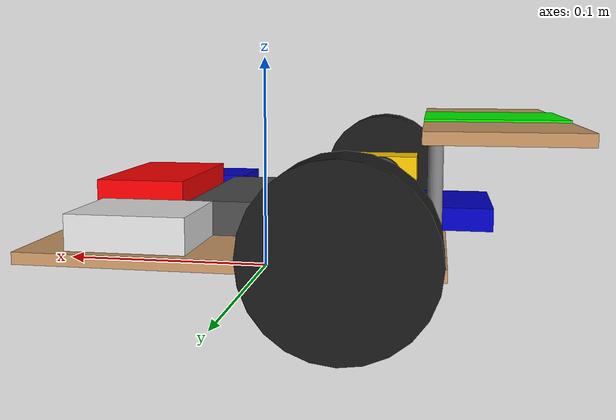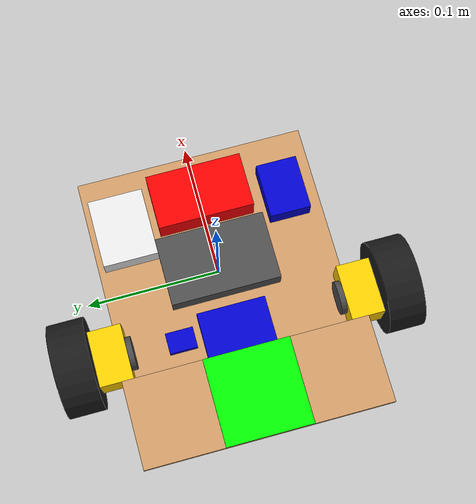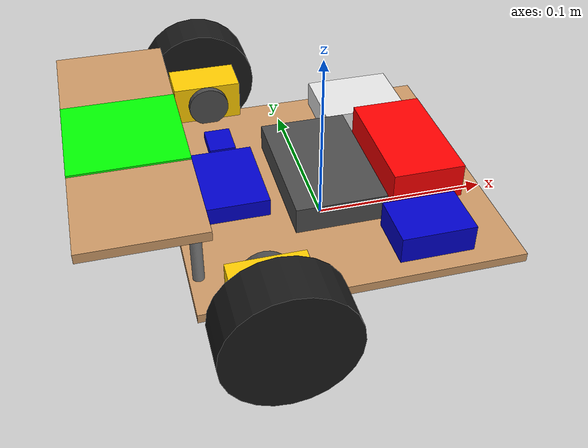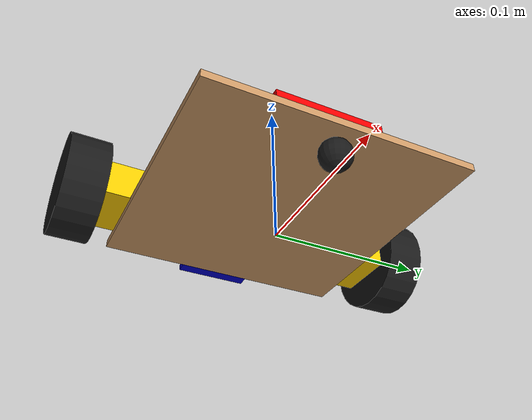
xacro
<?xml version="1.0"?>
<robot name="rc_car" xmlns:xacro="http://ros.org/wiki/xacro">

  <material name="wood"><color rgba="0.8 0.6 0.4 1.0"/></material>
  <material name="yellow"><color rgba="1.0 0.8 0.0 1.0"/></material>
  <material name="black"><color rgba="0.1 0.1 0.1 1.0"/></material>
  <material name="white"><color rgba="0.9 0.9 0.9 1.0"/></material>
  <material name="blue"><color rgba="0.0 0.0 0.8 1.0"/></material>
  <material name="gray"><color rgba="0.5 0.5 0.5 1.0"/></material>
  <material name="dark_gray"><color rgba="0.3 0.3 0.3 1.0"/></material>
  <material name="red"><color rgba="1.0 0.0 0.0 1.0"/></material>
  <material name="green"><color rgba="0.0 1.0 0.0 1.0"/></material>

  <link name="base_footprint"/>

  <joint name="base_joint" type="fixed">
    <parent link="base_footprint"/>
    <child link="base_link"/>
    <origin xyz="0 0 0.02" rpy="0 0 0"/>
  </joint>

  <link name="base_link">
    <visual>
      <origin xyz="0 0 0" rpy="0 0 0"/>
      <geometry><box size="0.17 0.17 0.005"/></geometry>
      <material name="wood"/>
    </visual>
    <collision>
      <geometry><box size="0.17 0.17 0.005"/></geometry>
    </collision>
    <inertial>
      <mass value="1.0"/>
      <inertia ixx="0.01" ixy="0" ixz="0" iyy="0.01" iyz="0" izz="0.01"/>
    </inertial>
  </link>

  <joint name="left_wheel_joint" type="continuous">
    <parent link="base_link"/>
    <child link="left_wheel"/>
    <origin xyz="-0.05 0.115 0.0135" rpy="-1.5708 0 0"/>
    <axis xyz="0 0 1"/>
  </joint>
  <link name="left_wheel">
    <visual>
      <geometry><cylinder radius="0.0335" length="0.026"/></geometry>
      <material name="black"/>
    </visual>
    <collision>
      <geometry><cylinder radius="0.0335" length="0.026"/></geometry>
    </collision>
    <inertial>
      <mass value="0.1"/>
      <inertia ixx="0.0001" ixy="0" ixz="0" iyy="0.0001" iyz="0" izz="0.0001"/>
    </inertial>
  </link>

  <joint name="right_wheel_joint" type="continuous">
    <parent link="base_link"/>
    <child link="right_wheel"/>
    <origin xyz="-0.05 -0.115 0.0135" rpy="-1.5708 0 0"/>
    <axis xyz="0 0 1"/>
  </joint>

  <link name="right_wheel">
    <visual>
      <geometry><cylinder radius="0.0335" length="0.026"/></geometry>
      <material name="black"/>
    </visual>
    <collision>
      <geometry><cylinder radius="0.0335" length="0.026"/></geometry>
    </collision>
    <inertial>
      <mass value="0.1"/>
      <inertia ixx="0.0001" ixy="0" ixz="0" iyy="0.0001" iyz="0" izz="0.0001"/>
    </inertial>
  </link>

  <joint name="left_motor_joint" type="fixed">
    <parent link="base_link"/>
    <child link="left_motor"/>
    <origin xyz="-0.05 0.09 0.0135" rpy="0 0 0"/>
  </joint>
  <link name="left_motor">
    <visual>
      <geometry><box size="0.04 0.024 0.024"/></geometry>
      <material name="yellow"/>
    </visual>
  </link>

  <joint name="left_encoder_joint" type="fixed">
    <parent link="left_motor"/>
    <child link="left_encoder"/>
    <origin xyz="0 -0.014 0" rpy="1.5708 0 0"/>
  </joint>
  <link name="left_encoder">
    <visual>
      <geometry><cylinder radius="0.012" length="0.004"/></geometry>
      <material name="dark_gray"/>
    </visual>
  </link>

  <joint name="right_motor_joint" type="fixed">
    <parent link="base_link"/>
    <child link="right_motor"/>
    <origin xyz="-0.05 -0.09 0.0135" rpy="0 0 0"/>
  </joint>
  <link name="right_motor">
    <visual>
      <geometry><box size="0.04 0.024 0.024"/></geometry>
      <material name="yellow"/>
    </visual>
  </link>

  <joint name="right_encoder_joint" type="fixed">
    <parent link="right_motor"/>
    <child link="right_encoder"/>
    <origin xyz="0 0.014 0" rpy="1.5708 0 0"/>
  </joint>
  <link name="right_encoder">
    <visual>
      <geometry><cylinder radius="0.012" length="0.004"/></geometry>
      <material name="dark_gray"/>
    </visual>
  </link>

  <joint name="arduino_joint" type="fixed">
    <parent link="base_link"/>
    <child link="arduino_board"/>
    <origin xyz="-0.07 0 0.01" rpy="0 0 0"/>
  </joint>
  <link name="arduino_board">
    <visual>
      <geometry><box size="0.07 0.05 0.01"/></geometry>
      <material name="blue"/>
    </visual>
  </link>

  <joint name="esp32_joint" type="fixed">
    <parent link="base_link"/>
    <child link="esp32_board"/>
    <origin xyz="0 0 0.01" rpy="0 0 0"/>
  </joint>
  <link name="esp32_board">
    <visual>
      <geometry><box size="0.05 0.08 0.015"/></geometry>
      <material name="dark_gray"/>
    </visual>
  </link>

  <joint name="battery_joint" type="fixed">
    <parent link="base_link"/>
    <child link="battery"/>
    <origin xyz="0.05 0 0.015" rpy="0 0 0"/>
  </joint>
  <link name="battery">
    <visual>
      <geometry><box size="0.04 0.07 0.02"/></geometry>
      <material name="red"/> </visual>
  </link>

  <joint name="motor_driver_joint" type="fixed">
    <parent link="base_link"/>
    <child link="motor_driver"/>
    <origin xyz="0.04 0.06 0.01" rpy="0 0 0"/>
  </joint>
  <link name="motor_driver">
    <visual>
      <geometry><box size="0.05 0.04 0.015"/></geometry>
      <material name="white"/>
    </visual>
  </link>

  <joint name="converter_joint" type="fixed">
    <parent link="base_link"/>
    <child link="converter"/>
    <origin xyz="0.04 -0.06 0.01" rpy="0 0 0"/>
  </joint>
  <link name="converter">
    <visual>
      <geometry><box size="0.04 0.03 0.015"/></geometry>
      <material name="blue"/>
    </visual>
  </link>

  <joint name="mpu_joint" type="fixed">
    <parent link="base_link"/>
    <child link="mpu6050"/>
    <origin xyz="-0.05 0.04 0.01" rpy="0 0 0"/>
  </joint>
  <link name="mpu6050">
    <visual>
      <geometry><box size="0.015 0.02 0.005"/></geometry>
      <material name="blue"/>
    </visual>
  </link>

  <joint name="left_pillar_joint" type="fixed">
    <parent link="base_link"/>
    <child link="left_pillar"/>
    <origin xyz="-0.08 0.06 0.025" rpy="0 0 0"/>
  </joint>
  <link name="left_pillar">
    <visual>
      <geometry><cylinder radius="0.003" length="0.045"/></geometry>
      <material name="gray"/>
    </visual>
  </link>

  <joint name="right_pillar_joint" type="fixed">
    <parent link="base_link"/>
    <child link="right_pillar"/>
    <origin xyz="-0.08 -0.06 0.025" rpy="0 0 0"/>
  </joint>
  <link name="right_pillar">
    <visual>
      <geometry><cylinder radius="0.003" length="0.045"/></geometry>
      <material name="gray"/>
    </visual>
  </link>

  <joint name="marker_plate_joint" type="fixed">
    <parent link="base_link"/>
    <child link="marker_plate"/>
    <origin xyz="-0.105 0 0.05" rpy="0 0 0"/>
  </joint>
  <link name="marker_plate">
    <visual>
      <geometry><box size="0.06 0.17 0.005"/></geometry>
      <material name="wood"/>
    </visual>
  </link>

  <joint name="aruco_marker_joint" type="fixed">
    <parent link="marker_plate"/>
    <child link="aruco_marker"/>
    <origin xyz="0 0 0.003" rpy="0 0 0"/>
  </joint>
 <link name="aruco_marker">
    <visual>
      <geometry><box size="0.06 0.06 0.001"/></geometry>
      <material name="green"/> </visual>
  </link>

  <joint name="caster_joint" type="fixed">
    <parent link="base_link"/>
    <child link="caster_wheel"/>
    <origin xyz="0.07 0 -0.01" rpy="0 0 0"/>
  </joint>
  <link name="caster_wheel">
    <visual>
      <geometry><sphere radius="0.01"/></geometry>
      <material name="black"/>
    </visual>
    <collision>
      <geometry><sphere radius="0.01"/></geometry>
    </collision>
  </link>

  <gazebo>
    <plugin filename="gz-sim-diff-drive-system" name="gz::sim::systems::DiffDrive">
      <left_joint>left_wheel_joint</left_joint>
      <right_joint>right_wheel_joint</right_joint>
      <wheel_separation>0.23</wheel_separation>
      <wheel_radius>0.0335</wheel_radius>
      <odom_publish_frequency>50</odom_publish_frequency>
      <topic>cmd_vel</topic>
      <odom_topic>odom</odom_topic>
      <frame_id>odom</frame_id>
      <child_frame_id>base_footprint</child_frame_id>
    </plugin>
  </gazebo>
</robot>
